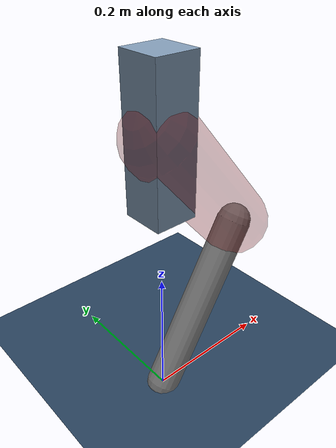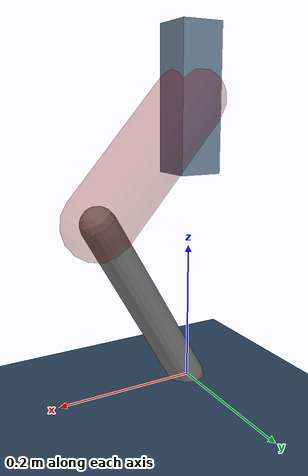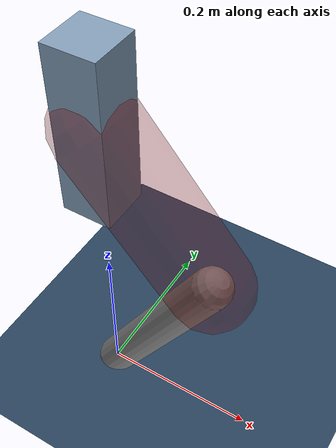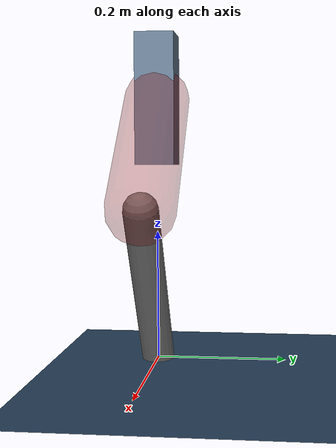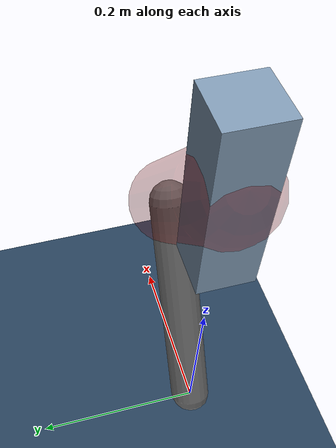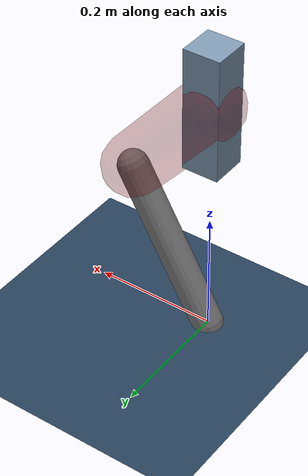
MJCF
<mujoco model="Hopper2D">
	<compiler inertiafromgeom="true" angle="radian" />
	<option timestep="0.001" integrator="implicit" cone="elliptic" solver="Newton" tolerance="1e-10" />

	<default>
		<geom contype="1" conaffinity="1" condim="3" friction="2 0.005 0.0001" solref="0.005 1" />
		<joint limited="true" damping="0.1" />
	</default>

	<asset>
		<texture name="skybox" type="skybox" builtin="gradient" rgb1=".4 .6 .8" rgb2="0 0 0" width="800" height="800" />
		<texture name="grid" type="2d" builtin="checker" rgb1=".1 .2 .3" rgb2=".2 .3 .4" width="300" height="300" mark="edge" markrgb=".2 .3 .4" />
		<material name="ground" texture="grid" texrepeat="1 1" texuniform="true" reflectance="0.1" />
		<material name="leg" rgba="0.5 0.6 0.7 1" />
	</asset>

	<worldbody>

		<geom name="floor" type="plane" size="5 5 0.25" material="ground" />

		<light directional="false" diffuse="0.8 0.8 0.8" specular="0.3 0.3 0.3" pos="0 0 2" dir="0 0 -1" />
		<light mode="targetbodycom" target="base" directional="false" diffuse="0.8 0.8 0.8" specular="0.3 0.3 0.3" pos="0 0 2" dir="0 0 -1" />

		<camera name="fixed" pos="0 -2 1" xyaxes="1 0 0 0 0 1" />
		<camera name="tracking" mode="trackcom" pos="0 -3 1" />

		<body name="root" pos="0 0 0.40464148856967563">
			<joint name="slide_x" type="slide" axis="1 0 0" range="-100 100" />
			<joint name="slide_z" type="slide" axis="0 0 1" range="0 10" />

			<body name="base" pos="0 0 0">
				<geom name="torso" type="box" size="0.03 0.03 0.1" mass="3.0389999999999997" material="leg" />

				<body name="link1" pos="0 0 0" euler="0 0.8576707864759421 0">
					<joint type="hinge" axis="0 -1 0" pos="0 0 0" name="hinge1" limited="true" range="-3.14 3.14" stiffness="0" damping="0.1" />
					<geom name="thigh" type="capsule" fromto="0 0 0 0.21244518232105475 0 0" size="0.05" rgba="0.5 0 0 0.3" mass="0.7607129558026369" />

					<body name="link2" pos="0.21244518232105475 0 0" euler="0 1.23095242784578 0">
						<joint type="hinge" axis="0 -1 0" pos="0 0 0" name="hinge2" limited="true" range="-3.14 3.14" stiffness="0" damping="0.1" />
						<geom name="shank" type="capsule" fromto="0 0 0 0.28077527678418 0 0" size="0.025" mass="0.467720221427344" />

					</body>
				</body>
			</body>
		</body>
	</worldbody>

	<actuator>
		<motor name="torque1" joint="hinge1" ctrlrange="-29.77089026898768 29.77089026898768" ctrllimited="true" gear="1" />
		<motor name="torque2" joint="hinge2" ctrlrange="-137.350840633587 137.350840633587" ctrllimited="true" gear="1" />
	</actuator>
</mujoco>
